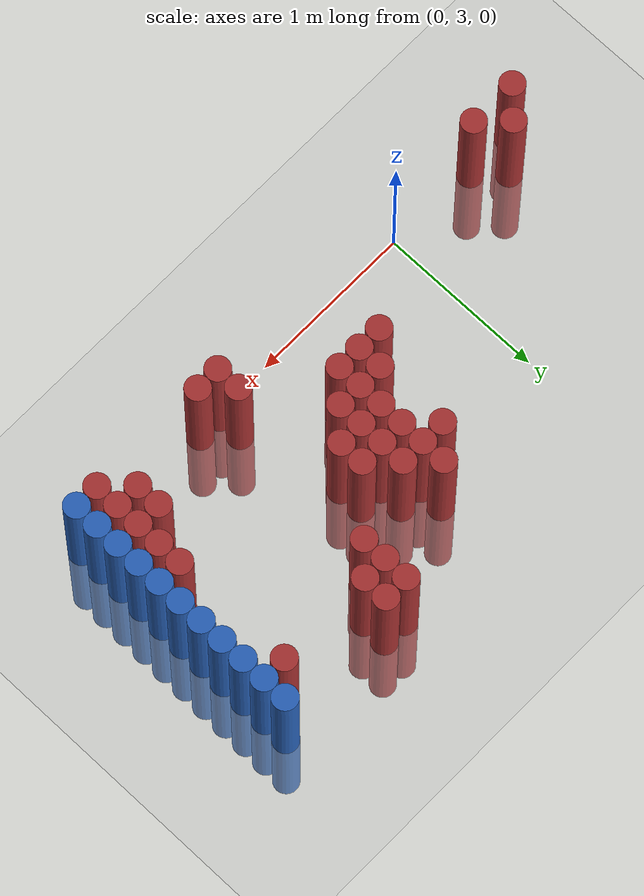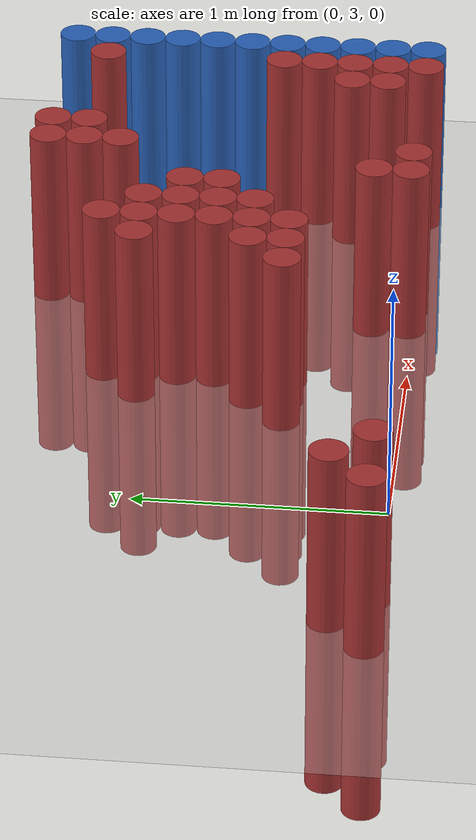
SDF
<sdf version="1.6">
 <world name="default">
  <model name="ground_plane">
   <static>1</static>
   <link name="link">
    <collision name="collision">
     <geometry><plane><normal>0 0 1</normal><size>100 100</size></plane></geometry>
     <surface><friction><ode><mu>100</mu><mu2>50</mu2></ode></friction></surface>
    </collision>
    <visual name="visual">
     <cast_shadows>0</cast_shadows>
     <geometry><plane><normal>0 0 1</normal><size>100 100</size></plane></geometry>
     <material>
      <script><uri>file://media/materials/scripts/gazebo.material</uri><name>Gazebo/Grey</name></script>
     </material>
    </visual>
   </link>
  </model>
  <model name="unit_cylinder_165">
   <static>1</static>
   <pose>-0.875000 3.025000 0.000000 0.000000 0.000000 0.000000</pose>
   <link name="link">
    <inertial>
     <mass>1</mass>
     <inertia><ixx>0.145833</ixx><ixy>0</ixy><ixz>0</ixz><iyy>0.145833</iyy><iyz>0</iyz><izz>0.125</izz></inertia>
    </inertial>
    <collision name="collision">
     <geometry><cylinder><radius>0.075000</radius><length>1.5</length></cylinder></geometry>
    </collision>
    <visual name="visual">
     <geometry><cylinder><radius>0.075000</radius><length>1.5</length></cylinder></geometry>
     <material>
      <ambient>0.648000 0.192000 0.192000 1</ambient>
      <diffuse>0.648000 0.192000 0.192000 1</diffuse>
     </material>
     <material>
      <script><name>Gazebo/Grey</name><uri>file://media/materials/scripts/gazebo.material</uri></script>
     </material>
    </visual>
   </link>
  </model>
  <model name="unit_cylinder_169">
   <static>1</static>
   <pose>-0.725000 3.175000 0.000000 0.000000 0.000000 0.000000</pose>
   <link name="link">
    <inertial>
     <mass>1</mass>
     <inertia><ixx>0.145833</ixx><ixy>0</ixy><ixz>0</ixz><iyy>0.145833</iyy><iyz>0</iyz><izz>0.125</izz></inertia>
    </inertial>
    <collision name="collision">
     <geometry><cylinder><radius>0.075000</radius><length>1.5</length></cylinder></geometry>
    </collision>
    <visual name="visual">
     <geometry><cylinder><radius>0.075000</radius><length>1.5</length></cylinder></geometry>
     <material>
      <ambient>0.648000 0.192000 0.192000 1</ambient>
      <diffuse>0.648000 0.192000 0.192000 1</diffuse>
     </material>
     <material>
      <script><name>Gazebo/Grey</name><uri>file://media/materials/scripts/gazebo.material</uri></script>
     </material>
    </visual>
   </link>
  </model>
  <model name="unit_cylinder_171">
   <static>1</static>
   <pose>-0.575000 3.025000 0.000000 0.000000 0.000000 0.000000</pose>
   <link name="link">
    <inertial>
     <mass>1</mass>
     <inertia><ixx>0.145833</ixx><ixy>0</ixy><ixz>0</ixz><iyy>0.145833</iyy><iyz>0</iyz><izz>0.125</izz></inertia>
    </inertial>
    <collision name="collision">
     <geometry><cylinder><radius>0.075000</radius><length>1.5</length></cylinder></geometry>
    </collision>
    <visual name="visual">
     <geometry><cylinder><radius>0.075000</radius><length>1.5</length></cylinder></geometry>
     <material>
      <ambient>0.648000 0.192000 0.192000 1</ambient>
      <diffuse>0.648000 0.192000 0.192000 1</diffuse>
     </material>
     <material>
      <script><name>Gazebo/Grey</name><uri>file://media/materials/scripts/gazebo.material</uri></script>
     </material>
    </visual>
   </link>
  </model>
  <model name="unit_cylinder_175">
   <static>1</static>
   <pose>0.625000 3.475000 0.000000 0.000000 0.000000 0.000000</pose>
   <link name="link">
    <inertial>
     <mass>1</mass>
     <inertia><ixx>0.145833</ixx><ixy>0</ixy><ixz>0</ixz><iyy>0.145833</iyy><iyz>0</iyz><izz>0.125</izz></inertia>
    </inertial>
    <collision name="collision">
     <geometry><cylinder><radius>0.075000</radius><length>1.5</length></cylinder></geometry>
    </collision>
    <visual name="visual">
     <geometry><cylinder><radius>0.075000</radius><length>1.5</length></cylinder></geometry>
     <material>
      <ambient>0.648000 0.192000 0.192000 1</ambient>
      <diffuse>0.648000 0.192000 0.192000 1</diffuse>
     </material>
     <material>
      <script><name>Gazebo/Grey</name><uri>file://media/materials/scripts/gazebo.material</uri></script>
     </material>
    </visual>
   </link>
  </model>
  <model name="unit_cylinder_178">
   <static>1</static>
   <pose>0.775000 3.475000 0.000000 0.000000 0.000000 0.000000</pose>
   <link name="link">
    <inertial>
     <mass>1</mass>
     <inertia><ixx>0.145833</ixx><ixy>0</ixy><ixz>0</ixz><iyy>0.145833</iyy><iyz>0</iyz><izz>0.125</izz></inertia>
    </inertial>
    <collision name="collision">
     <geometry><cylinder><radius>0.075000</radius><length>1.5</length></cylinder></geometry>
    </collision>
    <visual name="visual">
     <geometry><cylinder><radius>0.075000</radius><length>1.5</length></cylinder></geometry>
     <material>
      <ambient>0.648000 0.192000 0.192000 1</ambient>
      <diffuse>0.648000 0.192000 0.192000 1</diffuse>
     </material>
     <material>
      <script><name>Gazebo/Grey</name><uri>file://media/materials/scripts/gazebo.material</uri></script>
     </material>
    </visual>
   </link>
  </model>
  <model name="unit_cylinder_179">
   <static>1</static>
   <pose>0.775000 3.625000 0.000000 0.000000 0.000000 0.000000</pose>
   <link name="link">
    <inertial>
     <mass>1</mass>
     <inertia><ixx>0.145833</ixx><ixy>0</ixy><ixz>0</ixz><iyy>0.145833</iyy><iyz>0</iyz><izz>0.125</izz></inertia>
    </inertial>
    <collision name="collision">
     <geometry><cylinder><radius>0.075000</radius><length>1.5</length></cylinder></geometry>
    </collision>
    <visual name="visual">
     <geometry><cylinder><radius>0.075000</radius><length>1.5</length></cylinder></geometry>
     <material>
      <ambient>0.648000 0.192000 0.192000 1</ambient>
      <diffuse>0.648000 0.192000 0.192000 1</diffuse>
     </material>
     <material>
      <script><name>Gazebo/Grey</name><uri>file://media/materials/scripts/gazebo.material</uri></script>
     </material>
    </visual>
   </link>
  </model>
  <model name="unit_cylinder_180">
   <static>1</static>
   <pose>0.775000 4.075000 0.000000 0.000000 0.000000 0.000000</pose>
   <link name="link">
    <inertial>
     <mass>1</mass>
     <inertia><ixx>0.145833</ixx><ixy>0</ixy><ixz>0</ixz><iyy>0.145833</iyy><iyz>0</iyz><izz>0.125</izz></inertia>
    </inertial>
    <collision name="collision">
     <geometry><cylinder><radius>0.075000</radius><length>1.5</length></cylinder></geometry>
    </collision>
    <visual name="visual">
     <geometry><cylinder><radius>0.075000</radius><length>1.5</length></cylinder></geometry>
     <material>
      <ambient>0.648000 0.192000 0.192000 1</ambient>
      <diffuse>0.648000 0.192000 0.192000 1</diffuse>
     </material>
     <material>
      <script><name>Gazebo/Grey</name><uri>file://media/materials/scripts/gazebo.material</uri></script>
     </material>
    </visual>
   </link>
  </model>
  <model name="unit_cylinder_182">
   <static>1</static>
   <pose>0.925000 3.475000 0.000000 0.000000 0.000000 0.000000</pose>
   <link name="link">
    <inertial>
     <mass>1</mass>
     <inertia><ixx>0.145833</ixx><ixy>0</ixy><ixz>0</ixz><iyy>0.145833</iyy><iyz>0</iyz><izz>0.125</izz></inertia>
    </inertial>
    <collision name="collision">
     <geometry><cylinder><radius>0.075000</radius><length>1.5</length></cylinder></geometry>
    </collision>
    <visual name="visual">
     <geometry><cylinder><radius>0.075000</radius><length>1.5</length></cylinder></geometry>
     <material>
      <ambient>0.648000 0.192000 0.192000 1</ambient>
      <diffuse>0.648000 0.192000 0.192000 1</diffuse>
     </material>
     <material>
      <script><name>Gazebo/Grey</name><uri>file://media/materials/scripts/gazebo.material</uri></script>
     </material>
    </visual>
   </link>
  </model>
  <model name="unit_cylinder_183">
   <static>1</static>
   <pose>0.925000 3.625000 0.000000 0.000000 0.000000 0.000000</pose>
   <link name="link">
    <inertial>
     <mass>1</mass>
     <inertia><ixx>0.145833</ixx><ixy>0</ixy><ixz>0</ixz><iyy>0.145833</iyy><iyz>0</iyz><izz>0.125</izz></inertia>
    </inertial>
    <collision name="collision">
     <geometry><cylinder><radius>0.075000</radius><length>1.5</length></cylinder></geometry>
    </collision>
    <visual name="visual">
     <geometry><cylinder><radius>0.075000</radius><length>1.5</length></cylinder></geometry>
     <material>
      <ambient>0.648000 0.192000 0.192000 1</ambient>
      <diffuse>0.648000 0.192000 0.192000 1</diffuse>
     </material>
     <material>
      <script><name>Gazebo/Grey</name><uri>file://media/materials/scripts/gazebo.material</uri></script>
     </material>
    </visual>
   </link>
  </model>
  <model name="unit_cylinder_184">
   <static>1</static>
   <pose>0.925000 3.775000 0.000000 0.000000 0.000000 0.000000</pose>
   <link name="link">
    <inertial>
     <mass>1</mass>
     <inertia><ixx>0.145833</ixx><ixy>0</ixy><ixz>0</ixz><iyy>0.145833</iyy><iyz>0</iyz><izz>0.125</izz></inertia>
    </inertial>
    <collision name="collision">
     <geometry><cylinder><radius>0.075000</radius><length>1.5</length></cylinder></geometry>
    </collision>
    <visual name="visual">
     <geometry><cylinder><radius>0.075000</radius><length>1.5</length></cylinder></geometry>
     <material>
      <ambient>0.648000 0.192000 0.192000 1</ambient>
      <diffuse>0.648000 0.192000 0.192000 1</diffuse>
     </material>
     <material>
      <script><name>Gazebo/Grey</name><uri>file://media/materials/scripts/gazebo.material</uri></script>
     </material>
    </visual>
   </link>
  </model>
  <model name="unit_cylinder_185">
   <static>1</static>
   <pose>0.925000 3.925000 0.000000 0.000000 0.000000 0.000000</pose>
   <link name="link">
    <inertial>
     <mass>1</mass>
     <inertia><ixx>0.145833</ixx><ixy>0</ixy><ixz>0</ixz><iyy>0.145833</iyy><iyz>0</iyz><izz>0.125</izz></inertia>
    </inertial>
    <collision name="collision">
     <geometry><cylinder><radius>0.075000</radius><length>1.5</length></cylinder></geometry>
    </collision>
    <visual name="visual">
     <geometry><cylinder><radius>0.075000</radius><length>1.5</length></cylinder></geometry>
     <material>
      <ambient>0.648000 0.192000 0.192000 1</ambient>
      <diffuse>0.648000 0.192000 0.192000 1</diffuse>
     </material>
     <material>
      <script><name>Gazebo/Grey</name><uri>file://media/materials/scripts/gazebo.material</uri></script>
     </material>
    </visual>
   </link>
  </model>
  <model name="unit_cylinder_186">
   <static>1</static>
   <pose>0.925000 4.075000 0.000000 0.000000 0.000000 0.000000</pose>
   <link name="link">
    <inertial>
     <mass>1</mass>
     <inertia><ixx>0.145833</ixx><ixy>0</ixy><ixz>0</ixz><iyy>0.145833</iyy><iyz>0</iyz><izz>0.125</izz></inertia>
    </inertial>
    <collision name="collision">
     <geometry><cylinder><radius>0.075000</radius><length>1.5</length></cylinder></geometry>
    </collision>
    <visual name="visual">
     <geometry><cylinder><radius>0.075000</radius><length>1.5</length></cylinder></geometry>
     <material>
      <ambient>0.648000 0.192000 0.192000 1</ambient>
      <diffuse>0.648000 0.192000 0.192000 1</diffuse>
     </material>
     <material>
      <script><name>Gazebo/Grey</name><uri>file://media/materials/scripts/gazebo.material</uri></script>
     </material>
    </visual>
   </link>
  </model>
  <model name="unit_cylinder_187">
   <static>1</static>
   <pose>0.925000 4.225000 0.000000 0.000000 0.000000 0.000000</pose>
   <link name="link">
    <inertial>
     <mass>1</mass>
     <inertia><ixx>0.145833</ixx><ixy>0</ixy><ixz>0</ixz><iyy>0.145833</iyy><iyz>0</iyz><izz>0.125</izz></inertia>
    </inertial>
    <collision name="collision">
     <geometry><cylinder><radius>0.075000</radius><length>1.5</length></cylinder></geometry>
    </collision>
    <visual name="visual">
     <geometry><cylinder><radius>0.075000</radius><length>1.5</length></cylinder></geometry>
     <material>
      <ambient>0.648000 0.192000 0.192000 1</ambient>
      <diffuse>0.648000 0.192000 0.192000 1</diffuse>
     </material>
     <material>
      <script><name>Gazebo/Grey</name><uri>file://media/materials/scripts/gazebo.material</uri></script>
     </material>
    </visual>
   </link>
  </model>
  <model name="unit_cylinder_188">
   <static>1</static>
   <pose>1.075000 3.625000 0.000000 0.000000 0.000000 0.000000</pose>
   <link name="link">
    <inertial>
     <mass>1</mass>
     <inertia><ixx>0.145833</ixx><ixy>0</ixy><ixz>0</ixz><iyy>0.145833</iyy><iyz>0</iyz><izz>0.125</izz></inertia>
    </inertial>
    <collision name="collision">
     <geometry><cylinder><radius>0.075000</radius><length>1.5</length></cylinder></geometry>
    </collision>
    <visual name="visual">
     <geometry><cylinder><radius>0.075000</radius><length>1.5</length></cylinder></geometry>
     <material>
      <ambient>0.648000 0.192000 0.192000 1</ambient>
      <diffuse>0.648000 0.192000 0.192000 1</diffuse>
     </material>
     <material>
      <script><name>Gazebo/Grey</name><uri>file://media/materials/scripts/gazebo.material</uri></script>
     </material>
    </visual>
   </link>
  </model>
  <model name="unit_cylinder_189">
   <static>1</static>
   <pose>1.075000 3.775000 0.000000 0.000000 0.000000 0.000000</pose>
   <link name="link">
    <inertial>
     <mass>1</mass>
     <inertia><ixx>0.145833</ixx><ixy>0</ixy><ixz>0</ixz><iyy>0.145833</iyy><iyz>0</iyz><izz>0.125</izz></inertia>
    </inertial>
    <collision name="collision">
     <geometry><cylinder><radius>0.075000</radius><length>1.5</length></cylinder></geometry>
    </collision>
    <visual name="visual">
     <geometry><cylinder><radius>0.075000</radius><length>1.5</length></cylinder></geometry>
     <material>
      <ambient>0.648000 0.192000 0.192000 1</ambient>
      <diffuse>0.648000 0.192000 0.192000 1</diffuse>
     </material>
     <material>
      <script><name>Gazebo/Grey</name><uri>file://media/materials/scripts/gazebo.material</uri></script>
     </material>
    </visual>
   </link>
  </model>
  <model name="unit_cylinder_190">
   <static>1</static>
   <pose>1.075000 3.925000 0.000000 0.000000 0.000000 0.000000</pose>
   <link name="link">
    <inertial>
     <mass>1</mass>
     <inertia><ixx>0.145833</ixx><ixy>0</ixy><ixz>0</ixz><iyy>0.145833</iyy><iyz>0</iyz><izz>0.125</izz></inertia>
    </inertial>
    <collision name="collision">
     <geometry><cylinder><radius>0.075000</radius><length>1.5</length></cylinder></geometry>
    </collision>
    <visual name="visual">
     <geometry><cylinder><radius>0.075000</radius><length>1.5</length></cylinder></geometry>
     <material>
      <ambient>0.648000 0.192000 0.192000 1</ambient>
      <diffuse>0.648000 0.192000 0.192000 1</diffuse>
     </material>
     <material>
      <script><name>Gazebo/Grey</name><uri>file://media/materials/scripts/gazebo.material</uri></script>
     </material>
    </visual>
   </link>
  </model>
  <model name="unit_cylinder_191">
   <static>1</static>
   <pose>1.075000 4.075000 0.000000 0.000000 0.000000 0.000000</pose>
   <link name="link">
    <inertial>
     <mass>1</mass>
     <inertia><ixx>0.145833</ixx><ixy>0</ixy><ixz>0</ixz><iyy>0.145833</iyy><iyz>0</iyz><izz>0.125</izz></inertia>
    </inertial>
    <collision name="collision">
     <geometry><cylinder><radius>0.075000</radius><length>1.5</length></cylinder></geometry>
    </collision>
    <visual name="visual">
     <geometry><cylinder><radius>0.075000</radius><length>1.5</length></cylinder></geometry>
     <material>
      <ambient>0.648000 0.192000 0.192000 1</ambient>
      <diffuse>0.648000 0.192000 0.192000 1</diffuse>
     </material>
     <material>
      <script><name>Gazebo/Grey</name><uri>file://media/materials/scripts/gazebo.material</uri></script>
     </material>
    </visual>
   </link>
  </model>
  <model name="unit_cylinder_194">
   <static>1</static>
   <pose>1.225000 3.775000 0.000000 0.000000 0.000000 0.000000</pose>
   <link name="link">
    <inertial>
     <mass>1</mass>
     <inertia><ixx>0.145833</ixx><ixy>0</ixy><ixz>0</ixz><iyy>0.145833</iyy><iyz>0</iyz><izz>0.125</izz></inertia>
    </inertial>
    <collision name="collision">
     <geometry><cylinder><radius>0.075000</radius><length>1.5</length></cylinder></geometry>
    </collision>
    <visual name="visual">
     <geometry><cylinder><radius>0.075000</radius><length>1.5</length></cylinder></geometry>
     <material>
      <ambient>0.648000 0.192000 0.192000 1</ambient>
      <diffuse>0.648000 0.192000 0.192000 1</diffuse>
     </material>
     <material>
      <script><name>Gazebo/Grey</name><uri>file://media/materials/scripts/gazebo.material</uri></script>
     </material>
    </visual>
   </link>
  </model>
  <model name="unit_cylinder_195">
   <static>1</static>
   <pose>1.225000 3.925000 0.000000 0.000000 0.000000 0.000000</pose>
   <link name="link">
    <inertial>
     <mass>1</mass>
     <inertia><ixx>0.145833</ixx><ixy>0</ixy><ixz>0</ixz><iyy>0.145833</iyy><iyz>0</iyz><izz>0.125</izz></inertia>
    </inertial>
    <collision name="collision">
     <geometry><cylinder><radius>0.075000</radius><length>1.5</length></cylinder></geometry>
    </collision>
    <visual name="visual">
     <geometry><cylinder><radius>0.075000</radius><length>1.5</length></cylinder></geometry>
     <material>
      <ambient>0.648000 0.192000 0.192000 1</ambient>
      <diffuse>0.648000 0.192000 0.192000 1</diffuse>
     </material>
     <material>
      <script><name>Gazebo/Grey</name><uri>file://media/materials/scripts/gazebo.material</uri></script>
     </material>
    </visual>
   </link>
  </model>
  <model name="unit_cylinder_197">
   <static>1</static>
   <pose>1.375000 3.025000 0.000000 0.000000 0.000000 0.000000</pose>
   <link name="link">
    <inertial>
     <mass>1</mass>
     <inertia><ixx>0.145833</ixx><ixy>0</ixy><ixz>0</ixz><iyy>0.145833</iyy><iyz>0</iyz><izz>0.125</izz></inertia>
    </inertial>
    <collision name="collision">
     <geometry><cylinder><radius>0.075000</radius><length>1.5</length></cylinder></geometry>
    </collision>
    <visual name="visual">
     <geometry><cylinder><radius>0.075000</radius><length>1.5</length></cylinder></geometry>
     <material>
      <ambient>0.648000 0.192000 0.192000 1</ambient>
      <diffuse>0.648000 0.192000 0.192000 1</diffuse>
     </material>
     <material>
      <script><name>Gazebo/Grey</name><uri>file://media/materials/scripts/gazebo.material</uri></script>
     </material>
    </visual>
   </link>
  </model>
  <model name="unit_cylinder_198">
   <static>1</static>
   <pose>1.375000 3.175000 0.000000 0.000000 0.000000 0.000000</pose>
   <link name="link">
    <inertial>
     <mass>1</mass>
     <inertia><ixx>0.145833</ixx><ixy>0</ixy><ixz>0</ixz><iyy>0.145833</iyy><iyz>0</iyz><izz>0.125</izz></inertia>
    </inertial>
    <collision name="collision">
     <geometry><cylinder><radius>0.075000</radius><length>1.5</length></cylinder></geometry>
    </collision>
    <visual name="visual">
     <geometry><cylinder><radius>0.075000</radius><length>1.5</length></cylinder></geometry>
     <material>
      <ambient>0.648000 0.192000 0.192000 1</ambient>
      <diffuse>0.648000 0.192000 0.192000 1</diffuse>
     </material>
     <material>
      <script><name>Gazebo/Grey</name><uri>file://media/materials/scripts/gazebo.material</uri></script>
     </material>
    </visual>
   </link>
  </model>
  <model name="unit_cylinder_201">
   <static>1</static>
   <pose>1.525000 3.025000 0.000000 0.000000 0.000000 0.000000</pose>
   <link name="link">
    <inertial>
     <mass>1</mass>
     <inertia><ixx>0.145833</ixx><ixy>0</ixy><ixz>0</ixz><iyy>0.145833</iyy><iyz>0</iyz><izz>0.125</izz></inertia>
    </inertial>
    <collision name="collision">
     <geometry><cylinder><radius>0.075000</radius><length>1.5</length></cylinder></geometry>
    </collision>
    <visual name="visual">
     <geometry><cylinder><radius>0.075000</radius><length>1.5</length></cylinder></geometry>
     <material>
      <ambient>0.648000 0.192000 0.192000 1</ambient>
      <diffuse>0.648000 0.192000 0.192000 1</diffuse>
     </material>
     <material>
      <script><name>Gazebo/Grey</name><uri>file://media/materials/scripts/gazebo.material</uri></script>
     </material>
    </visual>
   </link>
  </model>
  <model name="unit_cylinder_202">
   <static>1</static>
   <pose>1.525000 4.225000 0.000000 0.000000 0.000000 0.000000</pose>
   <link name="link">
    <inertial>
     <mass>1</mass>
     <inertia><ixx>0.145833</ixx><ixy>0</ixy><ixz>0</ixz><iyy>0.145833</iyy><iyz>0</iyz><izz>0.125</izz></inertia>
    </inertial>
    <collision name="collision">
     <geometry><cylinder><radius>0.075000</radius><length>1.5</length></cylinder></geometry>
    </collision>
    <visual name="visual">
     <geometry><cylinder><radius>0.075000</radius><length>1.5</length></cylinder></geometry>
     <material>
      <ambient>0.648000 0.192000 0.192000 1</ambient>
      <diffuse>0.648000 0.192000 0.192000 1</diffuse>
     </material>
     <material>
      <script><name>Gazebo/Grey</name><uri>file://media/materials/scripts/gazebo.material</uri></script>
     </material>
    </visual>
   </link>
  </model>
  <model name="unit_cylinder_203">
   <static>1</static>
   <pose>1.525000 4.375000 0.000000 0.000000 0.000000 0.000000</pose>
   <link name="link">
    <inertial>
     <mass>1</mass>
     <inertia><ixx>0.145833</ixx><ixy>0</ixy><ixz>0</ixz><iyy>0.145833</iyy><iyz>0</iyz><izz>0.125</izz></inertia>
    </inertial>
    <collision name="collision">
     <geometry><cylinder><radius>0.075000</radius><length>1.5</length></cylinder></geometry>
    </collision>
    <visual name="visual">
     <geometry><cylinder><radius>0.075000</radius><length>1.5</length></cylinder></geometry>
     <material>
      <ambient>0.648000 0.192000 0.192000 1</ambient>
      <diffuse>0.648000 0.192000 0.192000 1</diffuse>
     </material>
     <material>
      <script><name>Gazebo/Grey</name><uri>file://media/materials/scripts/gazebo.material</uri></script>
     </material>
    </visual>
   </link>
  </model>
  <model name="unit_cylinder_204">
   <static>1</static>
   <pose>1.525000 4.525000 0.000000 0.000000 0.000000 0.000000</pose>
   <link name="link">
    <inertial>
     <mass>1</mass>
     <inertia><ixx>0.145833</ixx><ixy>0</ixy><ixz>0</ixz><iyy>0.145833</iyy><iyz>0</iyz><izz>0.125</izz></inertia>
    </inertial>
    <collision name="collision">
     <geometry><cylinder><radius>0.075000</radius><length>1.5</length></cylinder></geometry>
    </collision>
    <visual name="visual">
     <geometry><cylinder><radius>0.075000</radius><length>1.5</length></cylinder></geometry>
     <material>
      <ambient>0.648000 0.192000 0.192000 1</ambient>
      <diffuse>0.648000 0.192000 0.192000 1</diffuse>
     </material>
     <material>
      <script><name>Gazebo/Grey</name><uri>file://media/materials/scripts/gazebo.material</uri></script>
     </material>
    </visual>
   </link>
  </model>
  <model name="unit_cylinder_209">
   <static>1</static>
   <pose>1.675000 4.375000 0.000000 0.000000 0.000000 0.000000</pose>
   <link name="link">
    <inertial>
     <mass>1</mass>
     <inertia><ixx>0.145833</ixx><ixy>0</ixy><ixz>0</ixz><iyy>0.145833</iyy><iyz>0</iyz><izz>0.125</izz></inertia>
    </inertial>
    <collision name="collision">
     <geometry><cylinder><radius>0.075000</radius><length>1.5</length></cylinder></geometry>
    </collision>
    <visual name="visual">
     <geometry><cylinder><radius>0.075000</radius><length>1.5</length></cylinder></geometry>
     <material>
      <ambient>0.648000 0.192000 0.192000 1</ambient>
      <diffuse>0.648000 0.192000 0.192000 1</diffuse>
     </material>
     <material>
      <script><name>Gazebo/Grey</name><uri>file://media/materials/scripts/gazebo.material</uri></script>
     </material>
    </visual>
   </link>
  </model>
  <model name="unit_cylinder_210">
   <static>1</static>
   <pose>1.675000 4.525000 0.000000 0.000000 0.000000 0.000000</pose>
   <link name="link">
    <inertial>
     <mass>1</mass>
     <inertia><ixx>0.145833</ixx><ixy>0</ixy><ixz>0</ixz><iyy>0.145833</iyy><iyz>0</iyz><izz>0.125</izz></inertia>
    </inertial>
    <collision name="collision">
     <geometry><cylinder><radius>0.075000</radius><length>1.5</length></cylinder></geometry>
    </collision>
    <visual name="visual">
     <geometry><cylinder><radius>0.075000</radius><length>1.5</length></cylinder></geometry>
     <material>
      <ambient>0.648000 0.192000 0.192000 1</ambient>
      <diffuse>0.648000 0.192000 0.192000 1</diffuse>
     </material>
     <material>
      <script><name>Gazebo/Grey</name><uri>file://media/materials/scripts/gazebo.material</uri></script>
     </material>
    </visual>
   </link>
  </model>
  <model name="unit_cylinder_227">
   <static>1</static>
   <pose>2.125000 3.175000 0.000000 0.000000 0.000000 0.000000</pose>
   <link name="link">
    <inertial>
     <mass>1</mass>
     <inertia><ixx>0.145833</ixx><ixy>0</ixy><ixz>0</ixz><iyy>0.145833</iyy><iyz>0</iyz><izz>0.125</izz></inertia>
    </inertial>
    <collision name="collision">
     <geometry><cylinder><radius>0.075000</radius><length>1.5</length></cylinder></geometry>
    </collision>
    <visual name="visual">
     <geometry><cylinder><radius>0.075000</radius><length>1.5</length></cylinder></geometry>
     <material>
      <ambient>0.648000 0.192000 0.192000 1</ambient>
      <diffuse>0.648000 0.192000 0.192000 1</diffuse>
     </material>
     <material>
      <script><name>Gazebo/Grey</name><uri>file://media/materials/scripts/gazebo.material</uri></script>
     </material>
    </visual>
   </link>
  </model>
  <model name="unit_cylinder_228">
   <static>1</static>
   <pose>2.125000 3.325000 0.000000 0.000000 0.000000 0.000000</pose>
   <link name="link">
    <inertial>
     <mass>1</mass>
     <inertia><ixx>0.145833</ixx><ixy>0</ixy><ixz>0</ixz><iyy>0.145833</iyy><iyz>0</iyz><izz>0.125</izz></inertia>
    </inertial>
    <collision name="collision">
     <geometry><cylinder><radius>0.075000</radius><length>1.5</length></cylinder></geometry>
    </collision>
    <visual name="visual">
     <geometry><cylinder><radius>0.075000</radius><length>1.5</length></cylinder></geometry>
     <material>
      <ambient>0.648000 0.192000 0.192000 1</ambient>
      <diffuse>0.648000 0.192000 0.192000 1</diffuse>
     </material>
     <material>
      <script><name>Gazebo/Grey</name><uri>file://media/materials/scripts/gazebo.material</uri></script>
     </material>
    </visual>
   </link>
  </model>
  <model name="unit_cylinder_240">
   <static>1</static>
   <pose>2.275000 3.025000 0.000000 0.000000 0.000000 0.000000</pose>
   <link name="link">
    <inertial>
     <mass>1</mass>
     <inertia><ixx>0.145833</ixx><ixy>0</ixy><ixz>0</ixz><iyy>0.145833</iyy><iyz>0</iyz><izz>0.125</izz></inertia>
    </inertial>
    <collision name="collision">
     <geometry><cylinder><radius>0.075000</radius><length>1.5</length></cylinder></geometry>
    </collision>
    <visual name="visual">
     <geometry><cylinder><radius>0.075000</radius><length>1.5</length></cylinder></geometry>
     <material>
      <ambient>0.648000 0.192000 0.192000 1</ambient>
      <diffuse>0.648000 0.192000 0.192000 1</diffuse>
     </material>
     <material>
      <script><name>Gazebo/Grey</name><uri>file://media/materials/scripts/gazebo.material</uri></script>
     </material>
    </visual>
   </link>
  </model>
  <model name="unit_cylinder_241">
   <static>1</static>
   <pose>2.275000 3.175000 0.000000 0.000000 0.000000 0.000000</pose>
   <link name="link">
    <inertial>
     <mass>1</mass>
     <inertia><ixx>0.145833</ixx><ixy>0</ixy><ixz>0</ixz><iyy>0.145833</iyy><iyz>0</iyz><izz>0.125</izz></inertia>
    </inertial>
    <collision name="collision">
     <geometry><cylinder><radius>0.075000</radius><length>1.5</length></cylinder></geometry>
    </collision>
    <visual name="visual">
     <geometry><cylinder><radius>0.075000</radius><length>1.5</length></cylinder></geometry>
     <material>
      <ambient>0.648000 0.192000 0.192000 1</ambient>
      <diffuse>0.648000 0.192000 0.192000 1</diffuse>
     </material>
     <material>
      <script><name>Gazebo/Grey</name><uri>file://media/materials/scripts/gazebo.material</uri></script>
     </material>
    </visual>
   </link>
  </model>
  <model name="unit_cylinder_242">
   <static>1</static>
   <pose>2.275000 3.325000 0.000000 0.000000 0.000000 0.000000</pose>
   <link name="link">
    <inertial>
     <mass>1</mass>
     <inertia><ixx>0.145833</ixx><ixy>0</ixy><ixz>0</ixz><iyy>0.145833</iyy><iyz>0</iyz><izz>0.125</izz></inertia>
    </inertial>
    <collision name="collision">
     <geometry><cylinder><radius>0.075000</radius><length>1.5</length></cylinder></geometry>
    </collision>
    <visual name="visual">
     <geometry><cylinder><radius>0.075000</radius><length>1.5</length></cylinder></geometry>
     <material>
      <ambient>0.648000 0.192000 0.192000 1</ambient>
      <diffuse>0.648000 0.192000 0.192000 1</diffuse>
     </material>
     <material>
      <script><name>Gazebo/Grey</name><uri>file://media/materials/scripts/gazebo.material</uri></script>
     </material>
    </visual>
   </link>
  </model>
  <model name="unit_cylinder_243">
   <static>1</static>
   <pose>2.275000 3.475000 0.000000 0.000000 0.000000 0.000000</pose>
   <link name="link">
    <inertial>
     <mass>1</mass>
     <inertia><ixx>0.145833</ixx><ixy>0</ixy><ixz>0</ixz><iyy>0.145833</iyy><iyz>0</iyz><izz>0.125</izz></inertia>
    </inertial>
    <collision name="collision">
     <geometry><cylinder><radius>0.075000</radius><length>1.5</length></cylinder></geometry>
    </collision>
    <visual name="visual">
     <geometry><cylinder><radius>0.075000</radius><length>1.5</length></cylinder></geometry>
     <material>
      <ambient>0.648000 0.192000 0.192000 1</ambient>
      <diffuse>0.648000 0.192000 0.192000 1</diffuse>
     </material>
     <material>
      <script><name>Gazebo/Grey</name><uri>file://media/materials/scripts/gazebo.material</uri></script>
     </material>
    </visual>
   </link>
  </model>
  <model name="unit_cylinder_244">
   <static>1</static>
   <pose>2.275000 3.625000 0.000000 0.000000 0.000000 0.000000</pose>
   <link name="link">
    <inertial>
     <mass>1</mass>
     <inertia><ixx>0.145833</ixx><ixy>0</ixy><ixz>0</ixz><iyy>0.145833</iyy><iyz>0</iyz><izz>0.125</izz></inertia>
    </inertial>
    <collision name="collision">
     <geometry><cylinder><radius>0.075000</radius><length>1.5</length></cylinder></geometry>
    </collision>
    <visual name="visual">
     <geometry><cylinder><radius>0.075000</radius><length>1.5</length></cylinder></geometry>
     <material>
      <ambient>0.648000 0.192000 0.192000 1</ambient>
      <diffuse>0.648000 0.192000 0.192000 1</diffuse>
     </material>
     <material>
      <script><name>Gazebo/Grey</name><uri>file://media/materials/scripts/gazebo.material</uri></script>
     </material>
    </visual>
   </link>
  </model>
  <model name="unit_cylinder_245">
   <static>1</static>
   <pose>2.275000 4.375000 0.000000 0.000000 0.000000 0.000000</pose>
   <link name="link">
    <inertial>
     <mass>1</mass>
     <inertia><ixx>0.145833</ixx><ixy>0</ixy><ixz>0</ixz><iyy>0.145833</iyy><iyz>0</iyz><izz>0.125</izz></inertia>
    </inertial>
    <collision name="collision">
     <geometry><cylinder><radius>0.075000</radius><length>1.5</length></cylinder></geometry>
    </collision>
    <visual name="visual">
     <geometry><cylinder><radius>0.075000</radius><length>1.5</length></cylinder></geometry>
     <material>
      <ambient>0.648000 0.192000 0.192000 1</ambient>
      <diffuse>0.648000 0.192000 0.192000 1</diffuse>
     </material>
     <material>
      <script><name>Gazebo/Grey</name><uri>file://media/materials/scripts/gazebo.material</uri></script>
     </material>
    </visual>
   </link>
  </model>
  <model name="unit_cylinder_265">
   <static>1</static>
   <pose>2.425000 3.025000 0.000000 0.000000 0.000000 0.000000</pose>
   <link name="link">
    <inertial>
     <mass>1</mass>
     <inertia><ixx>0.145833</ixx><ixy>0</ixy><ixz>0</ixz><iyy>0.145833</iyy><iyz>0</iyz><izz>0.125</izz></inertia>
    </inertial>
    <collision name="collision">
     <geometry><cylinder><radius>0.075000</radius><length>1.5</length></cylinder></geometry>
    </collision>
    <visual name="visual">
     <geometry><cylinder><radius>0.075000</radius><length>1.5</length></cylinder></geometry>
     <material>
      <ambient>0.152000 0.379000 0.720000 1</ambient>
      <diffuse>0.152000 0.379000 0.720000 1</diffuse>
     </material>
     <material>
      <script><name>Gazebo/Grey</name><uri>file://media/materials/scripts/gazebo.material</uri></script>
     </material>
    </visual>
   </link>
  </model>
  <model name="unit_cylinder_266">
   <static>1</static>
   <pose>2.425000 3.175000 0.000000 0.000000 0.000000 0.000000</pose>
   <link name="link">
    <inertial>
     <mass>1</mass>
     <inertia><ixx>0.145833</ixx><ixy>0</ixy><ixz>0</ixz><iyy>0.145833</iyy><iyz>0</iyz><izz>0.125</izz></inertia>
    </inertial>
    <collision name="collision">
     <geometry><cylinder><radius>0.075000</radius><length>1.5</length></cylinder></geometry>
    </collision>
    <visual name="visual">
     <geometry><cylinder><radius>0.075000</radius><length>1.5</length></cylinder></geometry>
     <material>
      <ambient>0.152000 0.379000 0.720000 1</ambient>
      <diffuse>0.152000 0.379000 0.720000 1</diffuse>
     </material>
     <material>
      <script><name>Gazebo/Grey</name><uri>file://media/materials/scripts/gazebo.material</uri></script>
     </material>
    </visual>
   </link>
  </model>
  <model name="unit_cylinder_267">
   <static>1</static>
   <pose>2.425000 3.325000 0.000000 0.000000 0.000000 0.000000</pose>
   <link name="link">
    <inertial>
     <mass>1</mass>
     <inertia><ixx>0.145833</ixx><ixy>0</ixy><ixz>0</ixz><iyy>0.145833</iyy><iyz>0</iyz><izz>0.125</izz></inertia>
    </inertial>
    <collision name="collision">
     <geometry><cylinder><radius>0.075000</radius><length>1.5</length></cylinder></geometry>
    </collision>
    <visual name="visual">
     <geometry><cylinder><radius>0.075000</radius><length>1.5</length></cylinder></geometry>
     <material>
      <ambient>0.152000 0.379000 0.720000 1</ambient>
      <diffuse>0.152000 0.379000 0.720000 1</diffuse>
     </material>
     <material>
      <script><name>Gazebo/Grey</name><uri>file://media/materials/scripts/gazebo.material</uri></script>
     </material>
    </visual>
   </link>
  </model>
  <model name="unit_cylinder_268">
   <static>1</static>
   <pose>2.425000 3.475000 0.000000 0.000000 0.000000 0.000000</pose>
   <link name="link">
    <inertial>
     <mass>1</mass>
     <inertia><ixx>0.145833</ixx><ixy>0</ixy><ixz>0</ixz><iyy>0.145833</iyy><iyz>0</iyz><izz>0.125</izz></inertia>
    </inertial>
    <collision name="collision">
     <geometry><cylinder><radius>0.075000</radius><length>1.5</length></cylinder></geometry>
    </collision>
    <visual name="visual">
     <geometry><cylinder><radius>0.075000</radius><length>1.5</length></cylinder></geometry>
     <material>
      <ambient>0.152000 0.379000 0.720000 1</ambient>
      <diffuse>0.152000 0.379000 0.720000 1</diffuse>
     </material>
     <material>
      <script><name>Gazebo/Grey</name><uri>file://media/materials/scripts/gazebo.material</uri></script>
     </material>
    </visual>
   </link>
  </model>
  <model name="unit_cylinder_269">
   <static>1</static>
   <pose>2.425000 3.625000 0.000000 0.000000 0.000000 0.000000</pose>
   <link name="link">
    <inertial>
     <mass>1</mass>
     <inertia><ixx>0.145833</ixx><ixy>0</ixy><ixz>0</ixz><iyy>0.145833</iyy><iyz>0</iyz><izz>0.125</izz></inertia>
    </inertial>
    <collision name="collision">
     <geometry><cylinder><radius>0.075000</radius><length>1.5</length></cylinder></geometry>
    </collision>
    <visual name="visual">
     <geometry><cylinder><radius>0.075000</radius><length>1.5</length></cylinder></geometry>
     <material>
      <ambient>0.152000 0.379000 0.720000 1</ambient>
      <diffuse>0.152000 0.379000 0.720000 1</diffuse>
     </material>
     <material>
      <script><name>Gazebo/Grey</name><uri>file://media/materials/scripts/gazebo.material</uri></script>
     </material>
    </visual>
   </link>
  </model>
  <model name="unit_cylinder_270">
   <static>1</static>
   <pose>2.425000 3.775000 0.000000 0.000000 0.000000 0.000000</pose>
   <link name="link">
    <inertial>
     <mass>1</mass>
     <inertia><ixx>0.145833</ixx><ixy>0</ixy><ixz>0</ixz><iyy>0.145833</iyy><iyz>0</iyz><izz>0.125</izz></inertia>
    </inertial>
    <collision name="collision">
     <geometry><cylinder><radius>0.075000</radius><length>1.5</length></cylinder></geometry>
    </collision>
    <visual name="visual">
     <geometry><cylinder><radius>0.075000</radius><length>1.5</length></cylinder></geometry>
     <material>
      <ambient>0.152000 0.379000 0.720000 1</ambient>
      <diffuse>0.152000 0.379000 0.720000 1</diffuse>
     </material>
     <material>
      <script><name>Gazebo/Grey</name><uri>file://media/materials/scripts/gazebo.material</uri></script>
     </material>
    </visual>
   </link>
  </model>
  <model name="unit_cylinder_271">
   <static>1</static>
   <pose>2.425000 3.925000 0.000000 0.000000 0.000000 0.000000</pose>
   <link name="link">
    <inertial>
     <mass>1</mass>
     <inertia><ixx>0.145833</ixx><ixy>0</ixy><ixz>0</ixz><iyy>0.145833</iyy><iyz>0</iyz><izz>0.125</izz></inertia>
    </inertial>
    <collision name="collision">
     <geometry><cylinder><radius>0.075000</radius><length>1.5</length></cylinder></geometry>
    </collision>
    <visual name="visual">
     <geometry><cylinder><radius>0.075000</radius><length>1.5</length></cylinder></geometry>
     <material>
      <ambient>0.152000 0.379000 0.720000 1</ambient>
      <diffuse>0.152000 0.379000 0.720000 1</diffuse>
     </material>
     <material>
      <script><name>Gazebo/Grey</name><uri>file://media/materials/scripts/gazebo.material</uri></script>
     </material>
    </visual>
   </link>
  </model>
  <model name="unit_cylinder_272">
   <static>1</static>
   <pose>2.425000 4.075000 0.000000 0.000000 0.000000 0.000000</pose>
   <link name="link">
    <inertial>
     <mass>1</mass>
     <inertia><ixx>0.145833</ixx><ixy>0</ixy><ixz>0</ixz><iyy>0.145833</iyy><iyz>0</iyz><izz>0.125</izz></inertia>
    </inertial>
    <collision name="collision">
     <geometry><cylinder><radius>0.075000</radius><length>1.5</length></cylinder></geometry>
    </collision>
    <visual name="visual">
     <geometry><cylinder><radius>0.075000</radius><length>1.5</length></cylinder></geometry>
     <material>
      <ambient>0.152000 0.379000 0.720000 1</ambient>
      <diffuse>0.152000 0.379000 0.720000 1</diffuse>
     </material>
     <material>
      <script><name>Gazebo/Grey</name><uri>file://media/materials/scripts/gazebo.material</uri></script>
     </material>
    </visual>
   </link>
  </model>
  <model name="unit_cylinder_273">
   <static>1</static>
   <pose>2.425000 4.225000 0.000000 0.000000 0.000000 0.000000</pose>
   <link name="link">
    <inertial>
     <mass>1</mass>
     <inertia><ixx>0.145833</ixx><ixy>0</ixy><ixz>0</ixz><iyy>0.145833</iyy><iyz>0</iyz><izz>0.125</izz></inertia>
    </inertial>
    <collision name="collision">
     <geometry><cylinder><radius>0.075000</radius><length>1.5</length></cylinder></geometry>
    </collision>
    <visual name="visual">
     <geometry><cylinder><radius>0.075000</radius><length>1.5</length></cylinder></geometry>
     <material>
      <ambient>0.152000 0.379000 0.720000 1</ambient>
      <diffuse>0.152000 0.379000 0.720000 1</diffuse>
     </material>
     <material>
      <script><name>Gazebo/Grey</name><uri>file://media/materials/scripts/gazebo.material</uri></script>
     </material>
    </visual>
   </link>
  </model>
  <model name="unit_cylinder_274">
   <static>1</static>
   <pose>2.425000 4.375000 0.000000 0.000000 0.000000 0.000000</pose>
   <link name="link">
    <inertial>
     <mass>1</mass>
     <inertia><ixx>0.145833</ixx><ixy>0</ixy><ixz>0</ixz><iyy>0.145833</iyy><iyz>0</iyz><izz>0.125</izz></inertia>
    </inertial>
    <collision name="collision">
     <geometry><cylinder><radius>0.075000</radius><length>1.5</length></cylinder></geometry>
    </collision>
    <visual name="visual">
     <geometry><cylinder><radius>0.075000</radius><length>1.5</length></cylinder></geometry>
     <material>
      <ambient>0.152000 0.379000 0.720000 1</ambient>
      <diffuse>0.152000 0.379000 0.720000 1</diffuse>
     </material>
     <material>
      <script><name>Gazebo/Grey</name><uri>file://media/materials/scripts/gazebo.material</uri></script>
     </material>
    </visual>
   </link>
  </model>
  <model name="unit_cylinder_275">
   <static>1</static>
   <pose>2.425000 4.525000 0.000000 0.000000 0.000000 0.000000</pose>
   <link name="link">
    <inertial>
     <mass>1</mass>
     <inertia><ixx>0.145833</ixx><ixy>0</ixy><ixz>0</ixz><iyy>0.145833</iyy><iyz>0</iyz><izz>0.125</izz></inertia>
    </inertial>
    <collision name="collision">
     <geometry><cylinder><radius>0.075000</radius><length>1.5</length></cylinder></geometry>
    </collision>
    <visual name="visual">
     <geometry><cylinder><radius>0.075000</radius><length>1.5</length></cylinder></geometry>
     <material>
      <ambient>0.152000 0.379000 0.720000 1</ambient>
      <diffuse>0.152000 0.379000 0.720000 1</diffuse>
     </material>
     <material>
      <script><name>Gazebo/Grey</name><uri>file://media/materials/scripts/gazebo.material</uri></script>
     </material>
    </visual>
   </link>
  </model>
 </world>
</sdf>
